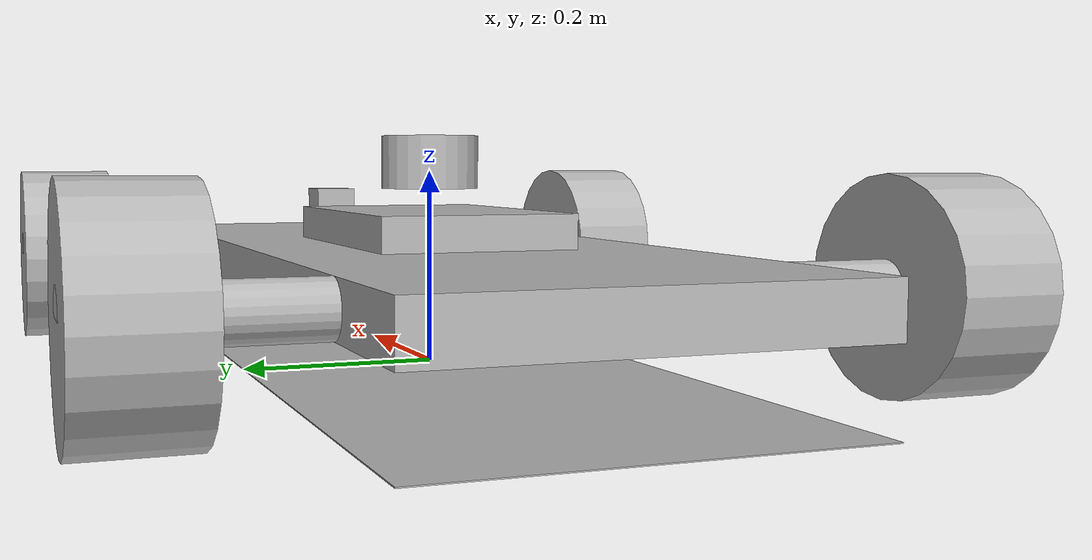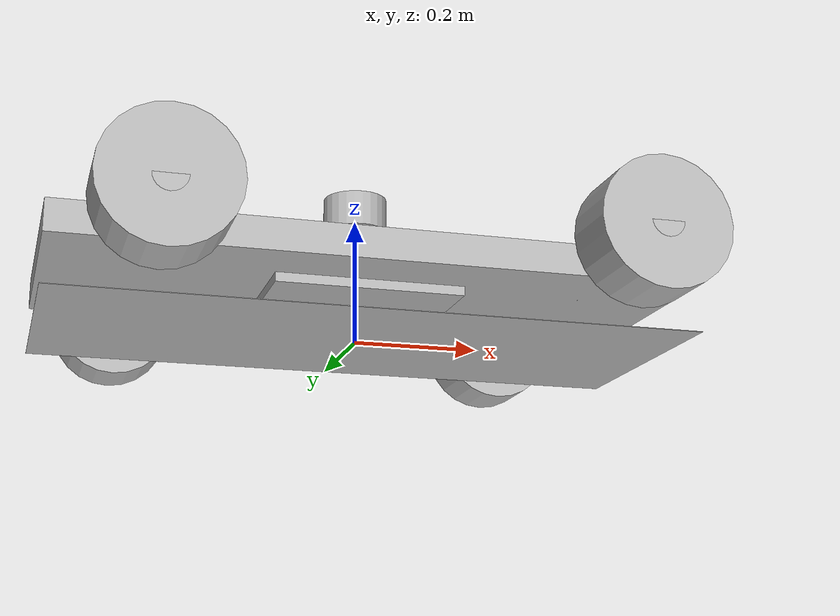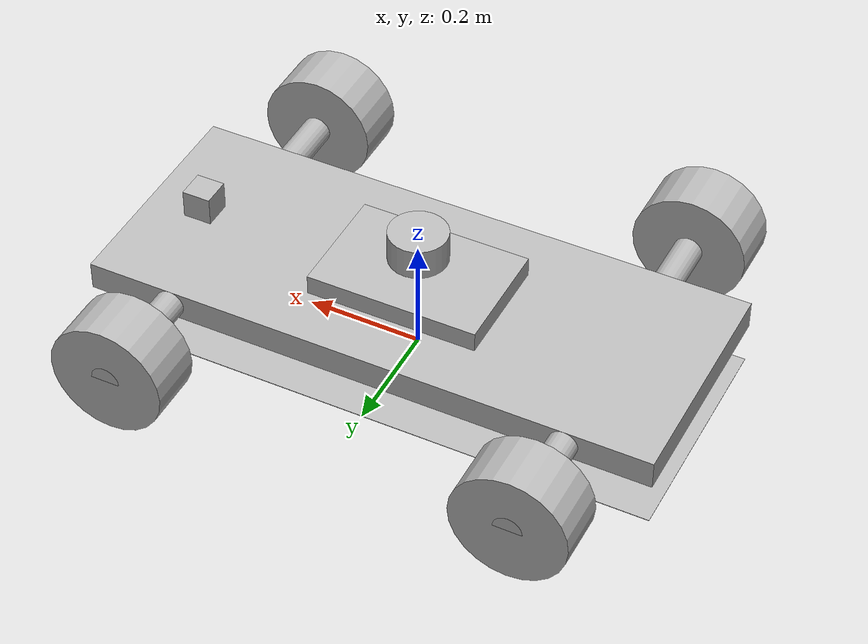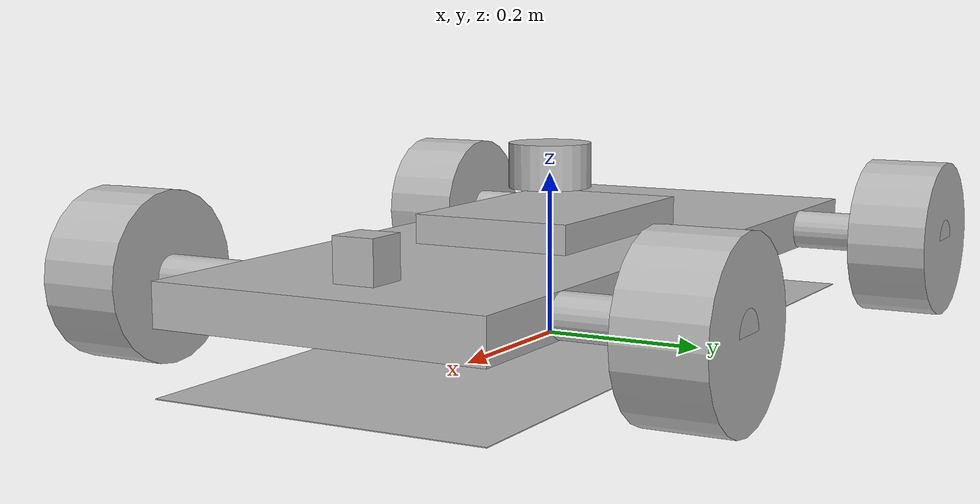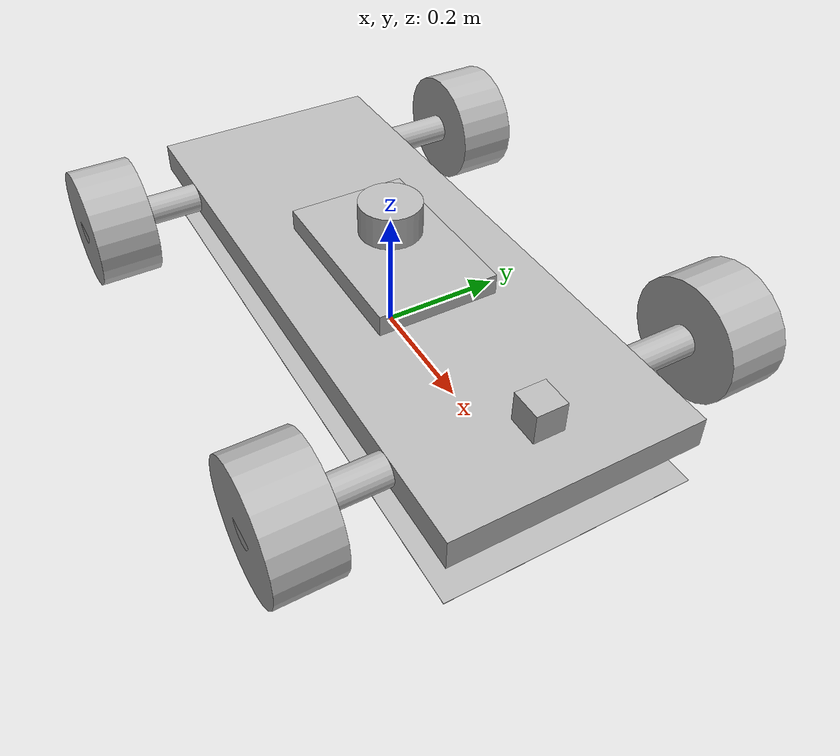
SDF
<sdf version='1.7'>
  <model name='ackermann_robot'>
    <link name='base_footprint'>
      <inertial>
        <pose>0.01203 0 0.10594 0 -0 0</pose>
        <mass>3.325</mass>
        <inertia>
          <ixx>0.124343</ixx>
          <ixy>1.98294e-17</ixy>
          <ixz>-0.00176241</ixz>
          <iyy>0.454861</iyy>
          <iyz>6.64446e-33</iyz>
          <izz>0.359977</izz>
        </inertia>
      </inertial>
      <collision name='base_footprint_fixed_joint_lump__base_link_collision'>
        <pose>0 0 0.1 0 -0 0</pose>
        <geometry>
          <box>
            <size>1 0.4 0.05</size>
          </box>
        </geometry>
      </collision>
      <collision name='base_footprint_fixed_joint_lump__frontal_horizontal_shaft_link_collision_1'>
        <pose>0.35 0 0.1 -1.5708 1.5708 0</pose>
        <geometry>
          <cylinder>
            <length>0.8</length>
            <radius>0.025</radius>
          </cylinder>
        </geometry>
      </collision>
      <collision name='base_footprint_fixed_joint_lump__imu_link_collision_2'>
        <pose>0.4 0 0.15 0 -0 0</pose>
        <geometry>
          <box>
            <size>0.05 0.05 0.05</size>
          </box>
        </geometry>
        <surface>
          <contact>
            <ode/>
          </contact>
          <friction>
            <ode/>
          </friction>
        </surface>
      </collision>
      <collision name='base_footprint_fixed_joint_lump__lidar_base_link_collision_3'>
        <pose>0 0 0.11 0 -0 0</pose>
        <geometry>
          <box>
            <size>0.1 0.1 0.1</size>
          </box>
        </geometry>
      </collision>
      <collision name='base_footprint_fixed_joint_lump__lidar_link_collision_4'>
        <pose>0 0 0.21 0 -0 0</pose>
        <geometry>
          <cylinder>
            <length>0.055</length>
            <radius>0.0508</radius>
          </cylinder>
        </geometry>
        <surface>
          <contact>
            <ode/>
          </contact>
          <friction>
            <ode/>
          </friction>
        </surface>
      </collision>
      <collision name='base_footprint_fixed_joint_lump__rear_horizontal_shaft_link_collision_5'>
        <pose>-0.35 0 0.1 -1.5708 1.5708 0</pose>
        <geometry>
          <cylinder>
            <length>0.8</length>
            <radius>0.025</radius>
          </cylinder>
        </geometry>
      </collision>
      <visual name='base_footprint_visual'>
        <pose>0 0 0 0 -0 0</pose>
        <geometry>
          <box>
            <size>1 0.4 0.001</size>
          </box>
        </geometry>
      </visual>
      <visual name='base_footprint_fixed_joint_lump__base_link_visual_1'>
        <pose>0 0 0.1 0 -0 0</pose>
        <geometry>
          <box>
            <size>1 0.4 0.05</size>
          </box>
        </geometry>
      </visual>
      <visual name='base_footprint_fixed_joint_lump__frontal_horizontal_shaft_link_visual_2'>
        <pose>0.35 0 0.1 -1.5708 1.5708 0</pose>
        <geometry>
          <cylinder>
            <length>0.8</length>
            <radius>0.025</radius>
          </cylinder>
        </geometry>
      </visual>
      <visual name='base_footprint_fixed_joint_lump__imu_link_visual_3'>
        <pose>0.4 0 0.15 0 -0 0</pose>
        <geometry>
          <box>
            <size>0.05 0.05 0.05</size>
          </box>
        </geometry>
      </visual>
      <visual name='base_footprint_fixed_joint_lump__lidar_base_link_visual_4'>
        <pose>0 0 0.11 0 -0 0</pose>
        <geometry>
          <box>
            <size>0.3 0.2 0.1</size>
          </box>
        </geometry>
      </visual>
      <visual name='base_footprint_fixed_joint_lump__lidar_link_visual_5'>
        <pose>0 0 0.21 0 -0 0</pose>
        <geometry>
          <cylinder>
            <length>0.055</length>
            <radius>0.0508</radius>
          </cylinder>
        </geometry>
      </visual>
      <visual name='base_footprint_fixed_joint_lump__rear_horizontal_shaft_link_visual_6'>
        <pose>-0.35 0 0.1 -1.5708 1.5708 0</pose>
        <geometry>
          <cylinder>
            <length>0.8</length>
            <radius>0.025</radius>
          </cylinder>
        </geometry>
      </visual>
      <sensor name='imu_sensor' type='imu'>
        <plugin name='imu_plugin' filename='libgazebo_ros_imu_sensor.so'>
          <ros>
            <remapping>~/out:=imu</remapping>
          </ros>
          <initial_orientation_as_reference>0</initial_orientation_as_reference>
        </plugin>
        <always_on>1</always_on>
        <update_rate>200</update_rate>
        <visualize>1</visualize>
        <imu>
          <angular_velocity>
            <x>
              <noise type='gaussian'>
                <mean>0</mean>
                <stddev>0.0002</stddev>
                <bias_mean>7.5e-06</bias_mean>
                <bias_stddev>8e-07</bias_stddev>
              </noise>
            </x>
            <y>
              <noise type='gaussian'>
                <mean>0</mean>
                <stddev>0.0002</stddev>
                <bias_mean>7.5e-06</bias_mean>
                <bias_stddev>8e-07</bias_stddev>
              </noise>
            </y>
            <z>
              <noise type='gaussian'>
                <mean>0</mean>
                <stddev>0.0002</stddev>
                <bias_mean>7.5e-06</bias_mean>
                <bias_stddev>8e-07</bias_stddev>
              </noise>
            </z>
          </angular_velocity>
          <linear_acceleration>
            <x>
              <noise type='gaussian'>
                <mean>0</mean>
                <stddev>0.017</stddev>
                <bias_mean>0.1</bias_mean>
                <bias_stddev>0.001</bias_stddev>
              </noise>
            </x>
            <y>
              <noise type='gaussian'>
                <mean>0</mean>
                <stddev>0.017</stddev>
                <bias_mean>0.1</bias_mean>
                <bias_stddev>0.001</bias_stddev>
              </noise>
            </y>
            <z>
              <noise type='gaussian'>
                <mean>0</mean>
                <stddev>0.017</stddev>
                <bias_mean>0.1</bias_mean>
                <bias_stddev>0.001</bias_stddev>
              </noise>
            </z>
          </linear_acceleration>
        </imu>
        <pose>0.4 0 0.15 0 -0 0</pose>
      </sensor>
      <sensor name='lidar' type='ray'>
        <always_on>1</always_on>
        <visualize>1</visualize>
        <update_rate>5</update_rate>
        <ray>
          <scan>
            <horizontal>
              <samples>360</samples>
              <resolution>1</resolution>
              <min_angle>0</min_angle>
              <max_angle>6.28</max_angle>
            </horizontal>
          </scan>
          <range>
            <min>0.12</min>
            <max>3.5</max>
            <resolution>0.015</resolution>
          </range>
          <noise>
            <type>gaussian</type>
            <mean>0</mean>
            <stddev>0.01</stddev>
          </noise>
        </ray>
        <plugin name='scan' filename='libgazebo_ros_ray_sensor.so'>
          <ros>
            <remapping>~/out:=scan</remapping>
          </ros>
          <output_type>sensor_msgs/LaserScan</output_type>
          <frame_name>lidar_link</frame_name>
        </plugin>
        <pose>0 0 0.21 0 -0 0</pose>
      </sensor>
    </link>
    <joint name='front_left_steer_joint' type='revolute'>
      <pose relative_to='base_footprint'>0.35 -0.35 0.099 -0 1.57 1.5708</pose>
      <parent>base_footprint</parent>
      <child>front_left_steering_link</child>
      <axis>
        <xyz>1 0 0</xyz>
        <limit>
          <lower>-0.524</lower>
          <upper>0.524</upper>
          <effort>1e+07</effort>
          <velocity>1e+06</velocity>
        </limit>
        <dynamics>
          <spring_reference>0</spring_reference>
          <spring_stiffness>0</spring_stiffness>
        </dynamics>
      </axis>
    </joint>
    <link name='front_left_steering_link'>
      <pose relative_to='front_left_steer_joint'>0 0 0 0 -0 0</pose>
      <inertial>
        <pose>0 0 0 0 -0 0</pose>
        <mass>1</mass>
        <inertia>
          <ixx>0.000633333</ixx>
          <ixy>0</ixy>
          <ixz>0</ixz>
          <iyy>0.000633333</iyy>
          <iyz>0</iyz>
          <izz>0.00125</izz>
        </inertia>
      </inertial>
      <collision name='front_left_steering_link_collision'>
        <pose>0 0 0 0 -0 0</pose>
        <geometry>
          <cylinder>
            <length>0.01</length>
            <radius>0.05</radius>
          </cylinder>
        </geometry>
      </collision>
      <visual name='front_left_steering_link_visual'>
        <pose>0 0 0 0 -0 0</pose>
        <geometry>
          <cylinder>
            <length>0.01</length>
            <radius>0.05</radius>
          </cylinder>
        </geometry>
      </visual>
    </link>
    <joint name='frontal_wheel_left_frontal_joint' type='revolute'>
      <pose relative_to='front_left_steering_link'>0 0 0 0 -0 1.57</pose>
      <parent>front_left_steering_link</parent>
      <child>frontal_wheel_left_link</child>
      <axis>
        <xyz>0 0 1</xyz>
        <limit>
          <lower>-1e+16</lower>
          <upper>1e+16</upper>
        </limit>
        <dynamics>
          <spring_reference>0</spring_reference>
          <spring_stiffness>0</spring_stiffness>
        </dynamics>
      </axis>
    </joint>
    <link name='frontal_wheel_left_link'>
      <pose relative_to='frontal_wheel_left_frontal_joint'>0 0 0 0 -0 0</pose>
      <inertial>
        <pose>0 0 0 0 -0 0</pose>
        <mass>0.2</mass>
        <inertia>
          <ixx>0.5</ixx>
          <ixy>0</ixy>
          <ixz>0</ixz>
          <iyy>0.5</iyy>
          <iyz>0</iyz>
          <izz>0.2</izz>
        </inertia>
      </inertial>
      <collision name='frontal_wheel_left_link_collision'>
        <pose>0 0 0 0 -0 0</pose>
        <geometry>
          <cylinder>
            <length>0.1</length>
            <radius>0.1</radius>
          </cylinder>
        </geometry>
      </collision>
      <visual name='frontal_wheel_left_link_visual'>
        <pose>0 0 0 0 -0 0</pose>
        <geometry>
          <cylinder>
            <length>0.1</length>
            <radius>0.1</radius>
          </cylinder>
        </geometry>
      </visual>
    </link>
    <joint name='front_right_steer_joint' type='revolute'>
      <pose relative_to='base_footprint'>0.35 0.35 0.099 -0 1.57 1.5708</pose>
      <parent>base_footprint</parent>
      <child>front_right_steering_link</child>
      <axis>
        <xyz>1 0 0</xyz>
        <limit>
          <lower>-0.524</lower>
          <upper>0.524</upper>
          <effort>1e+07</effort>
          <velocity>1e+06</velocity>
        </limit>
        <dynamics>
          <spring_reference>0</spring_reference>
          <spring_stiffness>0</spring_stiffness>
        </dynamics>
      </axis>
    </joint>
    <link name='front_right_steering_link'>
      <pose relative_to='front_right_steer_joint'>0 0 0 0 -0 0</pose>
      <inertial>
        <pose>0 0 0 0 -0 0</pose>
        <mass>1</mass>
        <inertia>
          <ixx>0.000633333</ixx>
          <ixy>0</ixy>
          <ixz>0</ixz>
          <iyy>0.000633333</iyy>
          <iyz>0</iyz>
          <izz>0.00125</izz>
        </inertia>
      </inertial>
      <collision name='front_right_steering_link_collision'>
        <pose>0 0 0 0 -0 0</pose>
        <geometry>
          <cylinder>
            <length>0.01</length>
            <radius>0.05</radius>
          </cylinder>
        </geometry>
      </collision>
      <visual name='front_right_steering_link_visual'>
        <pose>0 0 0 0 -0 0</pose>
        <geometry>
          <cylinder>
            <length>0.01</length>
            <radius>0.05</radius>
          </cylinder>
        </geometry>
      </visual>
    </link>
    <joint name='frontal_wheel_right_frontal_joint' type='revolute'>
      <pose relative_to='front_right_steering_link'>0 0 0 0 -0 1.57</pose>
      <parent>front_right_steering_link</parent>
      <child>frontal_wheel_right_link</child>
      <axis>
        <xyz>0 0 1</xyz>
        <limit>
          <lower>-1e+16</lower>
          <upper>1e+16</upper>
        </limit>
        <dynamics>
          <spring_reference>0</spring_reference>
          <spring_stiffness>0</spring_stiffness>
        </dynamics>
      </axis>
    </joint>
    <link name='frontal_wheel_right_link'>
      <pose relative_to='frontal_wheel_right_frontal_joint'>0 0 0 0 -0 0</pose>
      <inertial>
        <pose>0 0 0 0 -0 0</pose>
        <mass>0.2</mass>
        <inertia>
          <ixx>0.5</ixx>
          <ixy>0</ixy>
          <ixz>0</ixz>
          <iyy>0.5</iyy>
          <iyz>0</iyz>
          <izz>0.2</izz>
        </inertia>
      </inertial>
      <collision name='frontal_wheel_right_link_collision'>
        <pose>0 0 0 0 -0 0</pose>
        <geometry>
          <cylinder>
            <length>0.1</length>
            <radius>0.1</radius>
          </cylinder>
        </geometry>
      </collision>
      <visual name='frontal_wheel_right_link_visual'>
        <pose>0 0 0 0 -0 0</pose>
        <geometry>
          <cylinder>
            <length>0.1</length>
            <radius>0.1</radius>
          </cylinder>
        </geometry>
      </visual>
    </link>
    <joint name='rear_wheel_leftrear_joint' type='revolute'>
      <pose relative_to='base_footprint'>-0.35 0.35 0.1 -0 1.57 1.5708</pose>
      <parent>base_footprint</parent>
      <child>rear_wheel_left_link</child>
      <axis>
        <xyz>0 0 1</xyz>
        <limit>
          <lower>-1e+16</lower>
          <upper>1e+16</upper>
        </limit>
        <dynamics>
          <spring_reference>0</spring_reference>
          <spring_stiffness>0</spring_stiffness>
        </dynamics>
      </axis>
    </joint>
    <link name='rear_wheel_left_link'>
      <pose relative_to='rear_wheel_leftrear_joint'>0 0 0 0 -0 0</pose>
      <inertial>
        <pose>0 0 0 0 -0 0</pose>
        <mass>0.2</mass>
        <inertia>
          <ixx>0.5</ixx>
          <ixy>0</ixy>
          <ixz>0</ixz>
          <iyy>0.5</iyy>
          <iyz>0</iyz>
          <izz>0.2</izz>
        </inertia>
      </inertial>
      <collision name='rear_wheel_left_link_collision'>
        <pose>0 0 0 0 -0 0</pose>
        <geometry>
          <cylinder>
            <length>0.1</length>
            <radius>0.1</radius>
          </cylinder>
        </geometry>
      </collision>
      <visual name='rear_wheel_left_link_visual'>
        <pose>0 0 0 0 -0 0</pose>
        <geometry>
          <cylinder>
            <length>0.1</length>
            <radius>0.1</radius>
          </cylinder>
        </geometry>
      </visual>
    </link>
    <joint name='rear_wheel_rightrear_joint' type='revolute'>
      <pose relative_to='base_footprint'>-0.35 -0.35 0.1 -0 1.57 1.5708</pose>
      <parent>base_footprint</parent>
      <child>rear_wheel_right_link</child>
      <axis>
        <xyz>0 0 1</xyz>
        <limit>
          <lower>-1e+16</lower>
          <upper>1e+16</upper>
        </limit>
        <dynamics>
          <spring_reference>0</spring_reference>
          <spring_stiffness>0</spring_stiffness>
        </dynamics>
      </axis>
    </joint>
    <link name='rear_wheel_right_link'>
      <pose relative_to='rear_wheel_rightrear_joint'>0 0 0 0 -0 0</pose>
      <inertial>
        <pose>0 0 0 0 -0 0</pose>
        <mass>0.2</mass>
        <inertia>
          <ixx>0.5</ixx>
          <ixy>0</ixy>
          <ixz>0</ixz>
          <iyy>0.5</iyy>
          <iyz>0</iyz>
          <izz>0.2</izz>
        </inertia>
      </inertial>
      <collision name='rear_wheel_right_link_collision'>
        <pose>0 0 0 0 -0 0</pose>
        <geometry>
          <cylinder>
            <length>0.1</length>
            <radius>0.1</radius>
          </cylinder>
        </geometry>
      </collision>
      <visual name='rear_wheel_right_link_visual'>
        <pose>0 0 0 0 -0 0</pose>
        <geometry>
          <cylinder>
            <length>0.1</length>
            <radius>0.1</radius>
          </cylinder>
        </geometry>
      </visual>
    </link>
    <plugin name='gazebo_ros_ackermann_drive' filename='libgazebo_ros_ackermann_drive.so'>
      <ros>
        <parameter name='cmd_vel_topic' value='cmd_vel'/>
        <parameter name='odom_topic' value='odom'/>
        <parameter name='distance_topic' value='distance'/>
      </ros>
      <update_rate>30.0</update_rate>
      <front_left_joint>frontal_wheel_left_joint</front_left_joint>
      <front_right_joint>frontal_wheel_right_joint</front_right_joint>
      <rear_left_joint>rear_wheel_left_joint</rear_left_joint>
      <rear_right_joint>rear_wheel_right_joint</rear_right_joint>
      <left_steering_joint>front_left_steer_joint</left_steering_joint>
      <right_steering_joint>front_right_steer_joint</right_steering_joint>
      <max_steer>0.6458</max_steer>
      <max_steering_angle>7.85</max_steering_angle>
      <max_speed>20</max_speed>
      <left_steering_pid_gain>1500 0 1</left_steering_pid_gain>
      <left_steering_i_range>0 0</left_steering_i_range>
      <right_steering_pid_gain>1500 0 1</right_steering_pid_gain>
      <right_steering_i_range>0 0</right_steering_i_range>
      <linear_velocity_pid_gain>1000 0 1</linear_velocity_pid_gain>
      <linear_velocity_i_range>0 0</linear_velocity_i_range>
      <publish_odom>1</publish_odom>
      <publish_odom_tf>1</publish_odom_tf>
      <publish_wheel_tf>1</publish_wheel_tf>
      <publish_distance>1</publish_distance>
      <odometry_frame>odom_demo</odometry_frame>
      <robot_base_frame>base_footprint</robot_base_frame>
    </plugin>
    <plugin name='truck_joint_state' filename='libgazebo_ros_joint_state_publisher.so'>
      <ros>
        <remapping>~/out:=joint_states</remapping>
      </ros>
      <update_rate>30</update_rate>
      <joint_name>front_left_steer_joint</joint_name>
      <joint_name>front_right_steer_joint</joint_name>
      <joint_name>frontal_wheel_left_joint</joint_name>
      <joint_name>frontal_wheel_right_joint</joint_name>
      <joint_name>rear_wheel_left_joint</joint_name>
      <joint_name>rear_wheel_right_joint</joint_name>
    </plugin>
    <frame name='frontal_horizontal_shaft_joint' attached_to='base_link'>
      <pose>0.35 0 0 0 -0 1.5708</pose>
    </frame>
    <frame name='frontal_horizontal_shaft_link' attached_to='frontal_horizontal_shaft_joint'/>
    <frame name='imu_joint' attached_to='base_link'>
      <pose>0.4 0 0.05 0 -0 0</pose>
    </frame>
    <frame name='imu_link' attached_to='imu_joint'/>
    <frame name='lidar_direct_to_base_link' attached_to='lidar_base_link'>
      <pose>0 0 0.1 0 -0 0</pose>
    </frame>
    <frame name='lidar_link' attached_to='lidar_direct_to_base_link'/>
    <frame name='lidar_base_joint' attached_to='base_link'>
      <pose>0 0 0.01 0 -0 0</pose>
    </frame>
    <frame name='lidar_base_link' attached_to='lidar_base_joint'/>
    <frame name='rear_horizontal_shaft_joint' attached_to='base_link'>
      <pose>-0.35 0 0 0 -0 1.5708</pose>
    </frame>
    <frame name='rear_horizontal_shaft_link' attached_to='rear_horizontal_shaft_joint'/>
    <frame name='base_joint' attached_to='base_footprint'>
      <pose>0 0 0.1 0 -0 0</pose>
    </frame>
    <frame name='base_link' attached_to='base_joint'/>
  </model>
</sdf>
